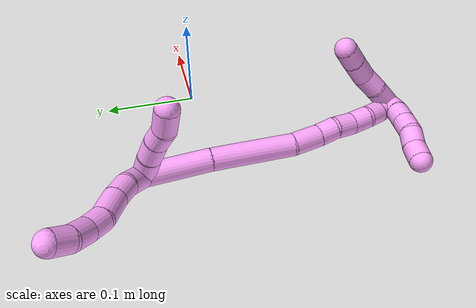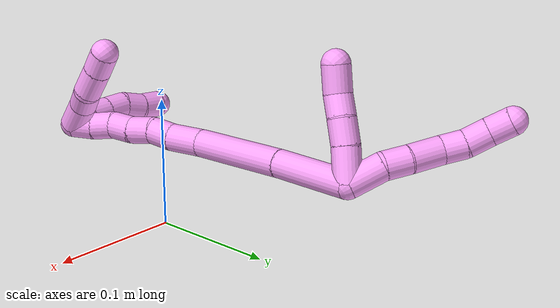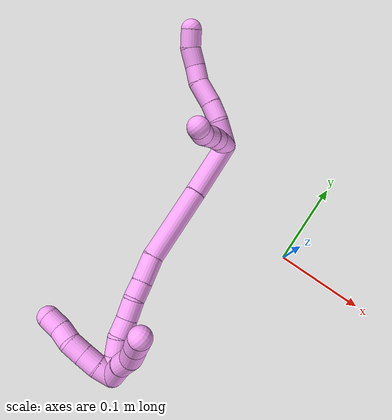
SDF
<sdf version="1.7">
 <world name="default">
  <model name="4">
   <static>0</static>
   <link name="4">
    <collision name="collision-cylinder-e_1_2_8">
     <pose>5.7e-05 0.006249 0.01508 -0.392814 0.003488 -0.000694</pose>
     <geometry><cylinder><radius>0.0125</radius><length>0.032647</length></cylinder></geometry>
     <surface>
      <friction><ode><mu>1.16</mu><mu2>1.16</mu2><slip1>0</slip1><slip2>0</slip2></ode></friction>
      <contact><ode><kp>1e+06</kp><kd>1</kd><max_vel>0</max_vel><min_depth>0.001</min_depth></ode></contact>
     </surface>
    </collision>
    <visual name="visual-cylinder-e_1_2_8">
     <pose>5.7e-05 0.006249 0.01508 -0.392814 0.003488 -0.000694</pose>
     <geometry><cylinder><radius>0.0125</radius><length>0.032647</length></cylinder></geometry>
     <material><ambient>1 0.65098 0.996078 1</ambient></material>
    </visual>
    <collision name="collision-cylinder-e_2_8_9">
     <pose>-0.00302 0.016352 0.040253 -0.36483 -0.282322 0.052415</pose>
     <geometry><cylinder><radius>0.0125</radius><length>0.022498</length></cylinder></geometry>
     <surface>
      <friction><ode><mu>1.16</mu><mu2>1.16</mu2><slip1>0</slip1><slip2>0</slip2></ode></friction>
      <contact><ode><kp>1e+06</kp><kd>1</kd><max_vel>0</max_vel><min_depth>0.001</min_depth></ode></contact>
     </surface>
    </collision>
    <visual name="visual-cylinder-e_2_8_9">
     <pose>-0.00302 0.016352 0.040253 -0.36483 -0.282322 0.052415</pose>
     <geometry><cylinder><radius>0.0125</radius><length>0.022498</length></cylinder></geometry>
     <material><ambient>1 0.65098 0.996078 1</ambient></material>
    </visual>
    <collision name="collision-cylinder-e_3_9_10">
     <pose>-0.010863 0.023632 0.064206 -0.242269 -0.318585 0.039108</pose>
     <geometry><cylinder><radius>0.0125</radius><length>0.030067</length></cylinder></geometry>
     <surface>
      <friction><ode><mu>1.16</mu><mu2>1.16</mu2><slip1>0</slip1><slip2>0</slip2></ode></friction>
      <contact><ode><kp>1e+06</kp><kd>1</kd><max_vel>0</max_vel><min_depth>0.001</min_depth></ode></contact>
     </surface>
    </collision>
    <visual name="visual-cylinder-e_3_9_10">
     <pose>-0.010863 0.023632 0.064206 -0.242269 -0.318585 0.039108</pose>
     <geometry><cylinder><radius>0.0125</radius><length>0.030067</length></cylinder></geometry>
     <material><ambient>1 0.65098 0.996078 1</ambient></material>
    </visual>
    <collision name="collision-cylinder-e_4_10_11">
     <pose>-0.017476 0.032233 0.08688 -0.530996 -0.18422 0.050224</pose>
     <geometry><cylinder><radius>0.0125</radius><length>0.020794</length></cylinder></geometry>
     <surface>
      <friction><ode><mu>1.16</mu><mu2>1.16</mu2><slip1>0</slip1><slip2>0</slip2></ode></friction>
      <contact><ode><kp>1e+06</kp><kd>1</kd><max_vel>0</max_vel><min_depth>0.001</min_depth></ode></contact>
     </surface>
    </collision>
    <visual name="visual-cylinder-e_4_10_11">
     <pose>-0.017476 0.032233 0.08688 -0.530996 -0.18422 0.050224</pose>
     <geometry><cylinder><radius>0.0125</radius><length>0.020794</length></cylinder></geometry>
     <material><ambient>1 0.65098 0.996078 1</ambient></material>
    </visual>
    <collision name="collision-cylinder-e_5_11_12">
     <pose>-0.019278 0.042114 0.105872 -0.433009 0.009129 -0.002008</pose>
     <geometry><cylinder><radius>0.0125</radius><length>0.022427</length></cylinder></geometry>
     <surface>
      <friction><ode><mu>1.16</mu><mu2>1.16</mu2><slip1>0</slip1><slip2>0</slip2></ode></friction>
      <contact><ode><kp>1e+06</kp><kd>1</kd><max_vel>0</max_vel><min_depth>0.001</min_depth></ode></contact>
     </surface>
    </collision>
    <visual name="visual-cylinder-e_5_11_12">
     <pose>-0.019278 0.042114 0.105872 -0.433009 0.009129 -0.002008</pose>
     <geometry><cylinder><radius>0.0125</radius><length>0.022427</length></cylinder></geometry>
     <material><ambient>1 0.65098 0.996078 1</ambient></material>
    </visual>
    <collision name="collision-cylinder-e_6_12_6">
     <pose>-0.017487 0.053783 0.124108 -0.712777 0.157278 -0.058656</pose>
     <geometry><cylinder><radius>0.0125</radius><length>0.021566</length></cylinder></geometry>
     <surface>
      <friction><ode><mu>1.16</mu><mu2>1.16</mu2><slip1>0</slip1><slip2>0</slip2></ode></friction>
      <contact><ode><kp>1e+06</kp><kd>1</kd><max_vel>0</max_vel><min_depth>0.001</min_depth></ode></contact>
     </surface>
    </collision>
    <visual name="visual-cylinder-e_6_12_6">
     <pose>-0.017487 0.053783 0.124108 -0.712777 0.157278 -0.058656</pose>
     <geometry><cylinder><radius>0.0125</radius><length>0.021566</length></cylinder></geometry>
     <material><ambient>1 0.65098 0.996078 1</ambient></material>
    </visual>
    <collision name="collision-cylinder-e_1_2_13">
     <pose>0.012157 -0.004388 0.008951 0.455773 0.884002 0.218622</pose>
     <geometry><cylinder><radius>0.0125</radius><length>0.031443</length></cylinder></geometry>
     <surface>
      <friction><ode><mu>1.16</mu><mu2>1.16</mu2><slip1>0</slip1><slip2>0</slip2></ode></friction>
      <contact><ode><kp>1e+06</kp><kd>1</kd><max_vel>0</max_vel><min_depth>0.001</min_depth></ode></contact>
     </surface>
    </collision>
    <visual name="visual-cylinder-e_1_2_13">
     <pose>0.012157 -0.004388 0.008951 0.455773 0.884002 0.218622</pose>
     <geometry><cylinder><radius>0.0125</radius><length>0.031443</length></cylinder></geometry>
     <material><ambient>1 0.65098 0.996078 1</ambient></material>
    </visual>
    <collision name="collision-cylinder-e_2_13_14">
     <pose>0.033416 -0.01281 0.023669 0.610392 0.912519 0.306812</pose>
     <geometry><cylinder><radius>0.0125</radius><length>0.023011</length></cylinder></geometry>
     <surface>
      <friction><ode><mu>1.16</mu><mu2>1.16</mu2><slip1>0</slip1><slip2>0</slip2></ode></friction>
      <contact><ode><kp>1e+06</kp><kd>1</kd><max_vel>0</max_vel><min_depth>0.001</min_depth></ode></contact>
     </surface>
    </collision>
    <visual name="visual-cylinder-e_2_13_14">
     <pose>0.033416 -0.01281 0.023669 0.610392 0.912519 0.306812</pose>
     <geometry><cylinder><radius>0.0125</radius><length>0.023011</length></cylinder></geometry>
     <material><ambient>1 0.65098 0.996078 1</ambient></material>
    </visual>
    <collision name="collision-cylinder-e_3_14_15">
     <pose>0.04971 -0.021393 0.034828 0.700878 0.795135 0.304613</pose>
     <geometry><cylinder><radius>0.0125</radius><length>0.020149</length></cylinder></geometry>
     <surface>
      <friction><ode><mu>1.16</mu><mu2>1.16</mu2><slip1>0</slip1><slip2>0</slip2></ode></friction>
      <contact><ode><kp>1e+06</kp><kd>1</kd><max_vel>0</max_vel><min_depth>0.001</min_depth></ode></contact>
     </surface>
    </collision>
    <visual name="visual-cylinder-e_3_14_15">
     <pose>0.04971 -0.021393 0.034828 0.700878 0.795135 0.304613</pose>
     <geometry><cylinder><radius>0.0125</radius><length>0.020149</length></cylinder></geometry>
     <material><ambient>1 0.65098 0.996078 1</ambient></material>
    </visual>
    <collision name="collision-cylinder-e_4_15_5">
     <pose>0.067862 -0.027896 0.046329 0.309566 1.04123 0.178454</pose>
     <geometry><cylinder><radius>0.0125</radius><length>0.025397</length></cylinder></geometry>
     <surface>
      <friction><ode><mu>1.16</mu><mu2>1.16</mu2><slip1>0</slip1><slip2>0</slip2></ode></friction>
      <contact><ode><kp>1e+06</kp><kd>1</kd><max_vel>0</max_vel><min_depth>0.001</min_depth></ode></contact>
     </surface>
    </collision>
    <visual name="visual-cylinder-e_4_15_5">
     <pose>0.067862 -0.027896 0.046329 0.309566 1.04123 0.178454</pose>
     <geometry><cylinder><radius>0.0125</radius><length>0.025397</length></cylinder></geometry>
     <material><ambient>1 0.65098 0.996078 1</ambient></material>
    </visual>
    <collision name="collision-cylinder-e_1_2_16">
     <pose>0.006291 -0.03421 -0.007573 1.78865 0.177651 0.220959</pose>
     <geometry><cylinder><radius>0.0125</radius><length>0.071198</length></cylinder></geometry>
     <surface>
      <friction><ode><mu>1.16</mu><mu2>1.16</mu2><slip1>0</slip1><slip2>0</slip2></ode></friction>
      <contact><ode><kp>1e+06</kp><kd>1</kd><max_vel>0</max_vel><min_depth>0.001</min_depth></ode></contact>
     </surface>
    </collision>
    <visual name="visual-cylinder-e_1_2_16">
     <pose>0.006291 -0.03421 -0.007573 1.78865 0.177651 0.220959</pose>
     <geometry><cylinder><radius>0.0125</radius><length>0.071198</length></cylinder></geometry>
     <material><ambient>1 0.65098 0.996078 1</ambient></material>
    </visual>
    <collision name="collision-cylinder-e_2_16_17">
     <pose>0.018189 -0.112307 -0.024971 1.79104 0.124036 0.154764</pose>
     <geometry><cylinder><radius>0.0125</radius><length>0.090641</length></cylinder></geometry>
     <surface>
      <friction><ode><mu>1.16</mu><mu2>1.16</mu2><slip1>0</slip1><slip2>0</slip2></ode></friction>
      <contact><ode><kp>1e+06</kp><kd>1</kd><max_vel>0</max_vel><min_depth>0.001</min_depth></ode></contact>
     </surface>
    </collision>
    <visual name="visual-cylinder-e_2_16_17">
     <pose>0.018189 -0.112307 -0.024971 1.79104 0.124036 0.154764</pose>
     <geometry><cylinder><radius>0.0125</radius><length>0.090641</length></cylinder></geometry>
     <material><ambient>1 0.65098 0.996078 1</ambient></material>
    </visual>
    <collision name="collision-cylinder-e_3_17_18">
     <pose>0.027398 -0.170686 -0.040624 1.95313 0.226601 0.33367</pose>
     <geometry><cylinder><radius>0.0125</radius><length>0.032063</length></cylinder></geometry>
     <surface>
      <friction><ode><mu>1.16</mu><mu2>1.16</mu2><slip1>0</slip1><slip2>0</slip2></ode></friction>
      <contact><ode><kp>1e+06</kp><kd>1</kd><max_vel>0</max_vel><min_depth>0.001</min_depth></ode></contact>
     </surface>
    </collision>
    <visual name="visual-cylinder-e_3_17_18">
     <pose>0.027398 -0.170686 -0.040624 1.95313 0.226601 0.33367</pose>
     <geometry><cylinder><radius>0.0125</radius><length>0.032063</length></cylinder></geometry>
     <material><ambient>1 0.65098 0.996078 1</ambient></material>
    </visual>
    <collision name="collision-cylinder-e_4_18_19">
     <pose>0.034589 -0.194648 -0.049457 1.87813 0.346766 0.46984</pose>
     <geometry><cylinder><radius>0.0125</radius><length>0.021124</length></cylinder></geometry>
     <surface>
      <friction><ode><mu>1.16</mu><mu2>1.16</mu2><slip1>0</slip1><slip2>0</slip2></ode></friction>
      <contact><ode><kp>1e+06</kp><kd>1</kd><max_vel>0</max_vel><min_depth>0.001</min_depth></ode></contact>
     </surface>
    </collision>
    <visual name="visual-cylinder-e_4_18_19">
     <pose>0.034589 -0.194648 -0.049457 1.87813 0.346766 0.46984</pose>
     <geometry><cylinder><radius>0.0125</radius><length>0.021124</length></cylinder></geometry>
     <material><ambient>1 0.65098 0.996078 1</ambient></material>
    </visual>
    <collision name="collision-cylinder-e_5_19_20">
     <pose>0.039537 -0.214236 -0.057767 2.05361 0.118331 0.195237</pose>
     <geometry><cylinder><radius>0.0125</radius><length>0.023014</length></cylinder></geometry>
     <surface>
      <friction><ode><mu>1.16</mu><mu2>1.16</mu2><slip1>0</slip1><slip2>0</slip2></ode></friction>
      <contact><ode><kp>1e+06</kp><kd>1</kd><max_vel>0</max_vel><min_depth>0.001</min_depth></ode></contact>
     </surface>
    </collision>
    <visual name="visual-cylinder-e_5_19_20">
     <pose>0.039537 -0.214236 -0.057767 2.05361 0.118331 0.195237</pose>
     <geometry><cylinder><radius>0.0125</radius><length>0.023014</length></cylinder></geometry>
     <material><ambient>1 0.65098 0.996078 1</ambient></material>
    </visual>
    <collision name="collision-cylinder-e_6_20_21">
     <pose>0.043918 -0.233986 -0.066665 1.92783 0.286031 0.409011</pose>
     <geometry><cylinder><radius>0.0125</radius><length>0.021426</length></cylinder></geometry>
     <surface>
      <friction><ode><mu>1.16</mu><mu2>1.16</mu2><slip1>0</slip1><slip2>0</slip2></ode></friction>
      <contact><ode><kp>1e+06</kp><kd>1</kd><max_vel>0</max_vel><min_depth>0.001</min_depth></ode></contact>
     </surface>
    </collision>
    <visual name="visual-cylinder-e_6_20_21">
     <pose>0.043918 -0.233986 -0.066665 1.92783 0.286031 0.409011</pose>
     <geometry><cylinder><radius>0.0125</radius><length>0.021426</length></cylinder></geometry>
     <material><ambient>1 0.65098 0.996078 1</ambient></material>
    </visual>
    <collision name="collision-cylinder-e_7_21_22">
     <pose>0.048677 -0.251528 -0.076402 2.23115 0.171639 0.347944</pose>
     <geometry><cylinder><radius>0.0125</radius><length>0.020337</length></cylinder></geometry>
     <surface>
      <friction><ode><mu>1.16</mu><mu2>1.16</mu2><slip1>0</slip1><slip2>0</slip2></ode></friction>
      <contact><ode><kp>1e+06</kp><kd>1</kd><max_vel>0</max_vel><min_depth>0.001</min_depth></ode></contact>
     </surface>
    </collision>
    <visual name="visual-cylinder-e_7_21_22">
     <pose>0.048677 -0.251528 -0.076402 2.23115 0.171639 0.347944</pose>
     <geometry><cylinder><radius>0.0125</radius><length>0.020337</length></cylinder></geometry>
     <material><ambient>1 0.65098 0.996078 1</ambient></material>
    </visual>
    <collision name="collision-cylinder-e_8_22_1">
     <pose>0.054054 -0.266936 -0.088255 2.22164 0.368682 0.719933</pose>
     <geometry><cylinder><radius>0.0125</radius><length>0.020198</length></cylinder></geometry>
     <surface>
      <friction><ode><mu>1.16</mu><mu2>1.16</mu2><slip1>0</slip1><slip2>0</slip2></ode></friction>
      <contact><ode><kp>1e+06</kp><kd>1</kd><max_vel>0</max_vel><min_depth>0.001</min_depth></ode></contact>
     </surface>
    </collision>
    <visual name="visual-cylinder-e_8_22_1">
     <pose>0.054054 -0.266936 -0.088255 2.22164 0.368682 0.719933</pose>
     <geometry><cylinder><radius>0.0125</radius><length>0.020198</length></cylinder></geometry>
     <material><ambient>1 0.65098 0.996078 1</ambient></material>
    </visual>
    <collision name="collision-cylinder-e_1_1_23">
     <pose>0.055065 -0.277181 -0.084715 0.289084 -0.265943 -0.038935</pose>
     <geometry><cylinder><radius>0.0125</radius><length>0.02</length></cylinder></geometry>
     <surface>
      <friction><ode><mu>1.16</mu><mu2>1.16</mu2><slip1>0</slip1><slip2>0</slip2></ode></friction>
      <contact><ode><kp>1e+06</kp><kd>1</kd><max_vel>0</max_vel><min_depth>0.001</min_depth></ode></contact>
     </surface>
    </collision>
    <visual name="visual-cylinder-e_1_1_23">
     <pose>0.055065 -0.277181 -0.084715 0.289084 -0.265943 -0.038935</pose>
     <geometry><cylinder><radius>0.0125</radius><length>0.02</length></cylinder></geometry>
     <material><ambient>1 0.65098 0.996078 1</ambient></material>
    </visual>
    <collision name="collision-cylinder-e_2_23_24">
     <pose>0.048452 -0.281505 -0.066431 0.172438 -0.409875 -0.035927</pose>
     <geometry><cylinder><radius>0.0125</radius><length>0.02</length></cylinder></geometry>
     <surface>
      <friction><ode><mu>1.16</mu><mu2>1.16</mu2><slip1>0</slip1><slip2>0</slip2></ode></friction>
      <contact><ode><kp>1e+06</kp><kd>1</kd><max_vel>0</max_vel><min_depth>0.001</min_depth></ode></contact>
     </surface>
    </collision>
    <visual name="visual-cylinder-e_2_23_24">
     <pose>0.048452 -0.281505 -0.066431 0.172438 -0.409875 -0.035927</pose>
     <geometry><cylinder><radius>0.0125</radius><length>0.02</length></cylinder></geometry>
     <material><ambient>1 0.65098 0.996078 1</ambient></material>
    </visual>
    <collision name="collision-cylinder-e_3_24_25">
     <pose>0.040529 -0.284403 -0.048299 0.144608 -0.404775 -0.029723</pose>
     <geometry><cylinder><radius>0.0125</radius><length>0.02</length></cylinder></geometry>
     <surface>
      <friction><ode><mu>1.16</mu><mu2>1.16</mu2><slip1>0</slip1><slip2>0</slip2></ode></friction>
      <contact><ode><kp>1e+06</kp><kd>1</kd><max_vel>0</max_vel><min_depth>0.001</min_depth></ode></contact>
     </surface>
    </collision>
    <visual name="visual-cylinder-e_3_24_25">
     <pose>0.040529 -0.284403 -0.048299 0.144608 -0.404775 -0.029723</pose>
     <geometry><cylinder><radius>0.0125</radius><length>0.02</length></cylinder></geometry>
     <material><ambient>1 0.65098 0.996078 1</ambient></material>
    </visual>
    <collision name="collision-cylinder-e_4_25_26">
     <pose>0.030076 -0.285717 -0.031616 -0.001391 -0.709451 0.000515</pose>
     <geometry><cylinder><radius>0.0125</radius><length>0.02</length></cylinder></geometry>
     <surface>
      <friction><ode><mu>1.16</mu><mu2>1.16</mu2><slip1>0</slip1><slip2>0</slip2></ode></friction>
      <contact><ode><kp>1e+06</kp><kd>1</kd><max_vel>0</max_vel><min_depth>0.001</min_depth></ode></contact>
     </surface>
    </collision>
    <visual name="visual-cylinder-e_4_25_26">
     <pose>0.030076 -0.285717 -0.031616 -0.001391 -0.709451 0.000515</pose>
     <geometry><cylinder><radius>0.0125</radius><length>0.02</length></cylinder></geometry>
     <material><ambient>1 0.65098 0.996078 1</ambient></material>
    </visual>
    <collision name="collision-cylinder-e_5_26_4">
     <pose>0.018606 -0.286867 -0.015421 0.134042 -0.518511 -0.035601</pose>
     <geometry><cylinder><radius>0.0125</radius><length>0.02</length></cylinder></geometry>
     <surface>
      <friction><ode><mu>1.16</mu><mu2>1.16</mu2><slip1>0</slip1><slip2>0</slip2></ode></friction>
      <contact><ode><kp>1e+06</kp><kd>1</kd><max_vel>0</max_vel><min_depth>0.001</min_depth></ode></contact>
     </surface>
    </collision>
    <visual name="visual-cylinder-e_5_26_4">
     <pose>0.018606 -0.286867 -0.015421 0.134042 -0.518511 -0.035601</pose>
     <geometry><cylinder><radius>0.0125</radius><length>0.02</length></cylinder></geometry>
     <material><ambient>1 0.65098 0.996078 1</ambient></material>
    </visual>
    <collision name="collision-cylinder-e_1_1_27">
     <pose>0.067443 -0.264873 -0.088262 -1.03299 0.719517 -0.420891</pose>
     <geometry><cylinder><radius>0.0125</radius><length>0.02959</length></cylinder></geometry>
     <surface>
      <friction><ode><mu>1.16</mu><mu2>1.16</mu2><slip1>0</slip1><slip2>0</slip2></ode></friction>
      <contact><ode><kp>1e+06</kp><kd>1</kd><max_vel>0</max_vel><min_depth>0.001</min_depth></ode></contact>
     </surface>
    </collision>
    <visual name="visual-cylinder-e_1_1_27">
     <pose>0.067443 -0.264873 -0.088262 -1.03299 0.719517 -0.420891</pose>
     <geometry><cylinder><radius>0.0125</radius><length>0.02959</length></cylinder></geometry>
     <material><ambient>1 0.65098 0.996078 1</ambient></material>
    </visual>
    <collision name="collision-cylinder-e_2_27_28">
     <pose>0.084759 -0.247389 -0.08017 -1.27774 0.740341 -0.561275</pose>
     <geometry><cylinder><radius>0.0125</radius><length>0.022433</length></cylinder></geometry>
     <surface>
      <friction><ode><mu>1.16</mu><mu2>1.16</mu2><slip1>0</slip1><slip2>0</slip2></ode></friction>
      <contact><ode><kp>1e+06</kp><kd>1</kd><max_vel>0</max_vel><min_depth>0.001</min_depth></ode></contact>
     </surface>
    </collision>
    <visual name="visual-cylinder-e_2_27_28">
     <pose>0.084759 -0.247389 -0.08017 -1.27774 0.740341 -0.561275</pose>
     <geometry><cylinder><radius>0.0125</radius><length>0.022433</length></cylinder></geometry>
     <material><ambient>1 0.65098 0.996078 1</ambient></material>
    </visual>
    <collision name="collision-cylinder-e_3_28_29">
     <pose>0.101228 -0.232083 -0.071128 -0.837289 0.730746 -0.337197</pose>
     <geometry><cylinder><radius>0.0125</radius><length>0.026677</length></cylinder></geometry>
     <surface>
      <friction><ode><mu>1.16</mu><mu2>1.16</mu2><slip1>0</slip1><slip2>0</slip2></ode></friction>
      <contact><ode><kp>1e+06</kp><kd>1</kd><max_vel>0</max_vel><min_depth>0.001</min_depth></ode></contact>
     </surface>
    </collision>
    <visual name="visual-cylinder-e_3_28_29">
     <pose>0.101228 -0.232083 -0.071128 -0.837289 0.730746 -0.337197</pose>
     <geometry><cylinder><radius>0.0125</radius><length>0.026677</length></cylinder></geometry>
     <material><ambient>1 0.65098 0.996078 1</ambient></material>
    </visual>
    <collision name="collision-cylinder-e_4_29_3">
     <pose>0.11748 -0.218899 -0.059408 -0.852953 0.761571 -0.359851</pose>
     <geometry><cylinder><radius>0.0125</radius><length>0.0213</length></cylinder></geometry>
     <surface>
      <friction><ode><mu>1.16</mu><mu2>1.16</mu2><slip1>0</slip1><slip2>0</slip2></ode></friction>
      <contact><ode><kp>1e+06</kp><kd>1</kd><max_vel>0</max_vel><min_depth>0.001</min_depth></ode></contact>
     </surface>
    </collision>
    <visual name="visual-cylinder-e_4_29_3">
     <pose>0.11748 -0.218899 -0.059408 -0.852953 0.761571 -0.359851</pose>
     <geometry><cylinder><radius>0.0125</radius><length>0.0213</length></cylinder></geometry>
     <material><ambient>1 0.65098 0.996078 1</ambient></material>
    </visual>
    <collision name="collision-sphere-3">
     <pose>0.124829 -0.213093 -0.054338 0 -0 0</pose>
     <geometry><sphere><radius>0.0125</radius></sphere></geometry>
     <surface>
      <friction><ode><mu>1.16</mu><mu2>1.16</mu2><slip1>0</slip1><slip2>0</slip2></ode></friction>
      <contact><ode><kp>1e+06</kp><kd>1</kd><max_vel>0</max_vel><min_depth>0.001</min_depth></ode></contact>
     </surface>
    </collision>
    <visual name="visual-sphere-3">
     <pose>0.124829 -0.213093 -0.054338 0 -0 0</pose>
     <geometry><sphere><radius>0.0125</radius></sphere></geometry>
     <material><ambient>1 0.65098 0.996078 1</ambient></material>
    </visual>
    <collision name="collision-sphere-29">
     <pose>0.11013 -0.224705 -0.064478 0 -0 0</pose>
     <geometry><sphere><radius>0.0125</radius></sphere></geometry>
     <surface>
      <friction><ode><mu>1.16</mu><mu2>1.16</mu2><slip1>0</slip1><slip2>0</slip2></ode></friction>
      <contact><ode><kp>1e+06</kp><kd>1</kd><max_vel>0</max_vel><min_depth>0.001</min_depth></ode></contact>
     </surface>
    </collision>
    <visual name="visual-sphere-29">
     <pose>0.11013 -0.224705 -0.064478 0 -0 0</pose>
     <geometry><sphere><radius>0.0125</radius></sphere></geometry>
     <material><ambient>1 0.65098 0.996078 1</ambient></material>
    </visual>
    <collision name="collision-sphere-28">
     <pose>0.092325 -0.239462 -0.077778 0 -0 0</pose>
     <geometry><sphere><radius>0.0125</radius></sphere></geometry>
     <surface>
      <friction><ode><mu>1.16</mu><mu2>1.16</mu2><slip1>0</slip1><slip2>0</slip2></ode></friction>
      <contact><ode><kp>1e+06</kp><kd>1</kd><max_vel>0</max_vel><min_depth>0.001</min_depth></ode></contact>
     </surface>
    </collision>
    <visual name="visual-sphere-28">
     <pose>0.092325 -0.239462 -0.077778 0 -0 0</pose>
     <geometry><sphere><radius>0.0125</radius></sphere></geometry>
     <material><ambient>1 0.65098 0.996078 1</ambient></material>
    </visual>
    <collision name="collision-sphere-27">
     <pose>0.077193 -0.255317 -0.082562 0 -0 0</pose>
     <geometry><sphere><radius>0.0125</radius></sphere></geometry>
     <surface>
      <friction><ode><mu>1.16</mu><mu2>1.16</mu2><slip1>0</slip1><slip2>0</slip2></ode></friction>
      <contact><ode><kp>1e+06</kp><kd>1</kd><max_vel>0</max_vel><min_depth>0.001</min_depth></ode></contact>
     </surface>
    </collision>
    <visual name="visual-sphere-27">
     <pose>0.077193 -0.255317 -0.082562 0 -0 0</pose>
     <geometry><sphere><radius>0.0125</radius></sphere></geometry>
     <material><ambient>1 0.65098 0.996078 1</ambient></material>
    </visual>
    <collision name="collision-sphere-4">
     <pose>0.013651 -0.288028 -0.006813 0 -0 0</pose>
     <geometry><sphere><radius>0.0125</radius></sphere></geometry>
     <surface>
      <friction><ode><mu>1.16</mu><mu2>1.16</mu2><slip1>0</slip1><slip2>0</slip2></ode></friction>
      <contact><ode><kp>1e+06</kp><kd>1</kd><max_vel>0</max_vel><min_depth>0.001</min_depth></ode></contact>
     </surface>
    </collision>
    <visual name="visual-sphere-4">
     <pose>0.013651 -0.288028 -0.006813 0 -0 0</pose>
     <geometry><sphere><radius>0.0125</radius></sphere></geometry>
     <material><ambient>1 0.65098 0.996078 1</ambient></material>
    </visual>
    <collision name="collision-sphere-26">
     <pose>0.023562 -0.285707 -0.024029 0 -0 0</pose>
     <geometry><sphere><radius>0.0125</radius></sphere></geometry>
     <surface>
      <friction><ode><mu>1.16</mu><mu2>1.16</mu2><slip1>0</slip1><slip2>0</slip2></ode></friction>
      <contact><ode><kp>1e+06</kp><kd>1</kd><max_vel>0</max_vel><min_depth>0.001</min_depth></ode></contact>
     </surface>
    </collision>
    <visual name="visual-sphere-26">
     <pose>0.023562 -0.285707 -0.024029 0 -0 0</pose>
     <geometry><sphere><radius>0.0125</radius></sphere></geometry>
     <material><ambient>1 0.65098 0.996078 1</ambient></material>
    </visual>
    <collision name="collision-sphere-25">
     <pose>0.036591 -0.285728 -0.039203 0 -0 0</pose>
     <geometry><sphere><radius>0.0125</radius></sphere></geometry>
     <surface>
      <friction><ode><mu>1.16</mu><mu2>1.16</mu2><slip1>0</slip1><slip2>0</slip2></ode></friction>
      <contact><ode><kp>1e+06</kp><kd>1</kd><max_vel>0</max_vel><min_depth>0.001</min_depth></ode></contact>
     </surface>
    </collision>
    <visual name="visual-sphere-25">
     <pose>0.036591 -0.285728 -0.039203 0 -0 0</pose>
     <geometry><sphere><radius>0.0125</radius></sphere></geometry>
     <material><ambient>1 0.65098 0.996078 1</ambient></material>
    </visual>
    <collision name="collision-sphere-24">
     <pose>0.044467 -0.283079 -0.057395 0 -0 0</pose>
     <geometry><sphere><radius>0.0125</radius></sphere></geometry>
     <surface>
      <friction><ode><mu>1.16</mu><mu2>1.16</mu2><slip1>0</slip1><slip2>0</slip2></ode></friction>
      <contact><ode><kp>1e+06</kp><kd>1</kd><max_vel>0</max_vel><min_depth>0.001</min_depth></ode></contact>
     </surface>
    </collision>
    <visual name="visual-sphere-24">
     <pose>0.044467 -0.283079 -0.057395 0 -0 0</pose>
     <geometry><sphere><radius>0.0125</radius></sphere></geometry>
     <material><ambient>1 0.65098 0.996078 1</ambient></material>
    </visual>
    <collision name="collision-sphere-23">
     <pose>0.052437 -0.279931 -0.075466 0 -0 0</pose>
     <geometry><sphere><radius>0.0125</radius></sphere></geometry>
     <surface>
      <friction><ode><mu>1.16</mu><mu2>1.16</mu2><slip1>0</slip1><slip2>0</slip2></ode></friction>
      <contact><ode><kp>1e+06</kp><kd>1</kd><max_vel>0</max_vel><min_depth>0.001</min_depth></ode></contact>
     </surface>
    </collision>
    <visual name="visual-sphere-23">
     <pose>0.052437 -0.279931 -0.075466 0 -0 0</pose>
     <geometry><sphere><radius>0.0125</radius></sphere></geometry>
     <material><ambient>1 0.65098 0.996078 1</ambient></material>
    </visual>
    <collision name="collision-sphere-1">
     <pose>0.057693 -0.27443 -0.093963 0 -0 0</pose>
     <geometry><sphere><radius>0.0125</radius></sphere></geometry>
     <surface>
      <friction><ode><mu>1.16</mu><mu2>1.16</mu2><slip1>0</slip1><slip2>0</slip2></ode></friction>
      <contact><ode><kp>1e+06</kp><kd>1</kd><max_vel>0</max_vel><min_depth>0.001</min_depth></ode></contact>
     </surface>
    </collision>
    <visual name="visual-sphere-1">
     <pose>0.057693 -0.27443 -0.093963 0 -0 0</pose>
     <geometry><sphere><radius>0.0125</radius></sphere></geometry>
     <material><ambient>1 0.65098 0.996078 1</ambient></material>
    </visual>
    <collision name="collision-sphere-22">
     <pose>0.050414 -0.259441 -0.082548 0 -0 0</pose>
     <geometry><sphere><radius>0.0125</radius></sphere></geometry>
     <surface>
      <friction><ode><mu>1.16</mu><mu2>1.16</mu2><slip1>0</slip1><slip2>0</slip2></ode></friction>
      <contact><ode><kp>1e+06</kp><kd>1</kd><max_vel>0</max_vel><min_depth>0.001</min_depth></ode></contact>
     </surface>
    </collision>
    <visual name="visual-sphere-22">
     <pose>0.050414 -0.259441 -0.082548 0 -0 0</pose>
     <geometry><sphere><radius>0.0125</radius></sphere></geometry>
     <material><ambient>1 0.65098 0.996078 1</ambient></material>
    </visual>
    <collision name="collision-sphere-21">
     <pose>0.046941 -0.243615 -0.070257 0 -0 0</pose>
     <geometry><sphere><radius>0.0125</radius></sphere></geometry>
     <surface>
      <friction><ode><mu>1.16</mu><mu2>1.16</mu2><slip1>0</slip1><slip2>0</slip2></ode></friction>
      <contact><ode><kp>1e+06</kp><kd>1</kd><max_vel>0</max_vel><min_depth>0.001</min_depth></ode></contact>
     </surface>
    </collision>
    <visual name="visual-sphere-21">
     <pose>0.046941 -0.243615 -0.070257 0 -0 0</pose>
     <geometry><sphere><radius>0.0125</radius></sphere></geometry>
     <material><ambient>1 0.65098 0.996078 1</ambient></material>
    </visual>
    <collision name="collision-sphere-12">
     <pose>-0.019176 0.046819 0.116051 0 -0 0</pose>
     <geometry><sphere><radius>0.0125</radius></sphere></geometry>
     <surface>
      <friction><ode><mu>1.16</mu><mu2>1.16</mu2><slip1>0</slip1><slip2>0</slip2></ode></friction>
      <contact><ode><kp>1e+06</kp><kd>1</kd><max_vel>0</max_vel><min_depth>0.001</min_depth></ode></contact>
     </surface>
    </collision>
    <visual name="visual-sphere-12">
     <pose>-0.019176 0.046819 0.116051 0 -0 0</pose>
     <geometry><sphere><radius>0.0125</radius></sphere></geometry>
     <material><ambient>1 0.65098 0.996078 1</ambient></material>
    </visual>
    <collision name="collision-sphere-11">
     <pose>-0.019381 0.037409 0.095694 0 -0 0</pose>
     <geometry><sphere><radius>0.0125</radius></sphere></geometry>
     <surface>
      <friction><ode><mu>1.16</mu><mu2>1.16</mu2><slip1>0</slip1><slip2>0</slip2></ode></friction>
      <contact><ode><kp>1e+06</kp><kd>1</kd><max_vel>0</max_vel><min_depth>0.001</min_depth></ode></contact>
     </surface>
    </collision>
    <visual name="visual-sphere-11">
     <pose>-0.019381 0.037409 0.095694 0 -0 0</pose>
     <geometry><sphere><radius>0.0125</radius></sphere></geometry>
     <material><ambient>1 0.65098 0.996078 1</ambient></material>
    </visual>
    <collision name="collision-sphere-10">
     <pose>-0.015572 0.027057 0.078066 0 -0 0</pose>
     <geometry><sphere><radius>0.0125</radius></sphere></geometry>
     <surface>
      <friction><ode><mu>1.16</mu><mu2>1.16</mu2><slip1>0</slip1><slip2>0</slip2></ode></friction>
      <contact><ode><kp>1e+06</kp><kd>1</kd><max_vel>0</max_vel><min_depth>0.001</min_depth></ode></contact>
     </surface>
    </collision>
    <visual name="visual-sphere-10">
     <pose>-0.015572 0.027057 0.078066 0 -0 0</pose>
     <geometry><sphere><radius>0.0125</radius></sphere></geometry>
     <material><ambient>1 0.65098 0.996078 1</ambient></material>
    </visual>
    <collision name="collision-sphere-9">
     <pose>-0.006154 0.020206 0.050346 0 -0 0</pose>
     <geometry><sphere><radius>0.0125</radius></sphere></geometry>
     <surface>
      <friction><ode><mu>1.16</mu><mu2>1.16</mu2><slip1>0</slip1><slip2>0</slip2></ode></friction>
      <contact><ode><kp>1e+06</kp><kd>1</kd><max_vel>0</max_vel><min_depth>0.001</min_depth></ode></contact>
     </surface>
    </collision>
    <visual name="visual-sphere-9">
     <pose>-0.006154 0.020206 0.050346 0 -0 0</pose>
     <geometry><sphere><radius>0.0125</radius></sphere></geometry>
     <material><ambient>1 0.65098 0.996078 1</ambient></material>
    </visual>
    <collision name="collision-sphere-2">
     <geometry><sphere><radius>0.0125</radius></sphere></geometry>
     <surface>
      <friction><ode><mu>1.16</mu><mu2>1.16</mu2><slip1>0</slip1><slip2>0</slip2></ode></friction>
      <contact><ode><kp>1e+06</kp><kd>1</kd><max_vel>0</max_vel><min_depth>0.001</min_depth></ode></contact>
     </surface>
    </collision>
    <visual name="visual-sphere-2">
     <geometry><sphere><radius>0.0125</radius></sphere></geometry>
     <material><ambient>1 0.65098 0.996078 1</ambient></material>
    </visual>
    <collision name="collision-sphere-19">
     <pose>0.038178 -0.204115 -0.052462 0 -0 0</pose>
     <geometry><sphere><radius>0.0125</radius></sphere></geometry>
     <surface>
      <friction><ode><mu>1.16</mu><mu2>1.16</mu2><slip1>0</slip1><slip2>0</slip2></ode></friction>
      <contact><ode><kp>1e+06</kp><kd>1</kd><max_vel>0</max_vel><min_depth>0.001</min_depth></ode></contact>
     </surface>
    </collision>
    <visual name="visual-sphere-19">
     <pose>0.038178 -0.204115 -0.052462 0 -0 0</pose>
     <geometry><sphere><radius>0.0125</radius></sphere></geometry>
     <material><ambient>1 0.65098 0.996078 1</ambient></material>
    </visual>
    <collision name="collision-sphere-8">
     <pose>0.000114 0.012497 0.030161 0 -0 0</pose>
     <geometry><sphere><radius>0.0125</radius></sphere></geometry>
     <surface>
      <friction><ode><mu>1.16</mu><mu2>1.16</mu2><slip1>0</slip1><slip2>0</slip2></ode></friction>
      <contact><ode><kp>1e+06</kp><kd>1</kd><max_vel>0</max_vel><min_depth>0.001</min_depth></ode></contact>
     </surface>
    </collision>
    <visual name="visual-sphere-8">
     <pose>0.000114 0.012497 0.030161 0 -0 0</pose>
     <geometry><sphere><radius>0.0125</radius></sphere></geometry>
     <material><ambient>1 0.65098 0.996078 1</ambient></material>
    </visual>
    <collision name="collision-sphere-6">
     <pose>-0.015798 0.060747 0.132165 0 -0 0</pose>
     <geometry><sphere><radius>0.0125</radius></sphere></geometry>
     <surface>
      <friction><ode><mu>1.16</mu><mu2>1.16</mu2><slip1>0</slip1><slip2>0</slip2></ode></friction>
      <contact><ode><kp>1e+06</kp><kd>1</kd><max_vel>0</max_vel><min_depth>0.001</min_depth></ode></contact>
     </surface>
    </collision>
    <visual name="visual-sphere-6">
     <pose>-0.015798 0.060747 0.132165 0 -0 0</pose>
     <geometry><sphere><radius>0.0125</radius></sphere></geometry>
     <material><ambient>1 0.65098 0.996078 1</ambient></material>
    </visual>
    <collision name="collision-sphere-13">
     <pose>0.024314 -0.008775 0.017902 0 -0 0</pose>
     <geometry><sphere><radius>0.0125</radius></sphere></geometry>
     <surface>
      <friction><ode><mu>1.16</mu><mu2>1.16</mu2><slip1>0</slip1><slip2>0</slip2></ode></friction>
      <contact><ode><kp>1e+06</kp><kd>1</kd><max_vel>0</max_vel><min_depth>0.001</min_depth></ode></contact>
     </surface>
    </collision>
    <visual name="visual-sphere-13">
     <pose>0.024314 -0.008775 0.017902 0 -0 0</pose>
     <geometry><sphere><radius>0.0125</radius></sphere></geometry>
     <material><ambient>1 0.65098 0.996078 1</ambient></material>
    </visual>
    <collision name="collision-sphere-14">
     <pose>0.042517 -0.016844 0.029437 0 -0 0</pose>
     <geometry><sphere><radius>0.0125</radius></sphere></geometry>
     <surface>
      <friction><ode><mu>1.16</mu><mu2>1.16</mu2><slip1>0</slip1><slip2>0</slip2></ode></friction>
      <contact><ode><kp>1e+06</kp><kd>1</kd><max_vel>0</max_vel><min_depth>0.001</min_depth></ode></contact>
     </surface>
    </collision>
    <visual name="visual-sphere-14">
     <pose>0.042517 -0.016844 0.029437 0 -0 0</pose>
     <geometry><sphere><radius>0.0125</radius></sphere></geometry>
     <material><ambient>1 0.65098 0.996078 1</ambient></material>
    </visual>
    <collision name="collision-sphere-15">
     <pose>0.056903 -0.025942 0.040219 0 -0 0</pose>
     <geometry><sphere><radius>0.0125</radius></sphere></geometry>
     <surface>
      <friction><ode><mu>1.16</mu><mu2>1.16</mu2><slip1>0</slip1><slip2>0</slip2></ode></friction>
      <contact><ode><kp>1e+06</kp><kd>1</kd><max_vel>0</max_vel><min_depth>0.001</min_depth></ode></contact>
     </surface>
    </collision>
    <visual name="visual-sphere-15">
     <pose>0.056903 -0.025942 0.040219 0 -0 0</pose>
     <geometry><sphere><radius>0.0125</radius></sphere></geometry>
     <material><ambient>1 0.65098 0.996078 1</ambient></material>
    </visual>
    <collision name="collision-sphere-5">
     <pose>0.078821 -0.029851 0.052439 0 -0 0</pose>
     <geometry><sphere><radius>0.0125</radius></sphere></geometry>
     <surface>
      <friction><ode><mu>1.16</mu><mu2>1.16</mu2><slip1>0</slip1><slip2>0</slip2></ode></friction>
      <contact><ode><kp>1e+06</kp><kd>1</kd><max_vel>0</max_vel><min_depth>0.001</min_depth></ode></contact>
     </surface>
    </collision>
    <visual name="visual-sphere-5">
     <pose>0.078821 -0.029851 0.052439 0 -0 0</pose>
     <geometry><sphere><radius>0.0125</radius></sphere></geometry>
     <material><ambient>1 0.65098 0.996078 1</ambient></material>
    </visual>
    <collision name="collision-sphere-16">
     <pose>0.012582 -0.068421 -0.015146 0 -0 0</pose>
     <geometry><sphere><radius>0.0125</radius></sphere></geometry>
     <surface>
      <friction><ode><mu>1.16</mu><mu2>1.16</mu2><slip1>0</slip1><slip2>0</slip2></ode></friction>
      <contact><ode><kp>1e+06</kp><kd>1</kd><max_vel>0</max_vel><min_depth>0.001</min_depth></ode></contact>
     </surface>
    </collision>
    <visual name="visual-sphere-16">
     <pose>0.012582 -0.068421 -0.015146 0 -0 0</pose>
     <geometry><sphere><radius>0.0125</radius></sphere></geometry>
     <material><ambient>1 0.65098 0.996078 1</ambient></material>
    </visual>
    <collision name="collision-sphere-17">
     <pose>0.023796 -0.156192 -0.034796 0 -0 0</pose>
     <geometry><sphere><radius>0.0125</radius></sphere></geometry>
     <surface>
      <friction><ode><mu>1.16</mu><mu2>1.16</mu2><slip1>0</slip1><slip2>0</slip2></ode></friction>
      <contact><ode><kp>1e+06</kp><kd>1</kd><max_vel>0</max_vel><min_depth>0.001</min_depth></ode></contact>
     </surface>
    </collision>
    <visual name="visual-sphere-17">
     <pose>0.023796 -0.156192 -0.034796 0 -0 0</pose>
     <geometry><sphere><radius>0.0125</radius></sphere></geometry>
     <material><ambient>1 0.65098 0.996078 1</ambient></material>
    </visual>
    <collision name="collision-sphere-18">
     <pose>0.030999 -0.18518 -0.046452 0 -0 0</pose>
     <geometry><sphere><radius>0.0125</radius></sphere></geometry>
     <surface>
      <friction><ode><mu>1.16</mu><mu2>1.16</mu2><slip1>0</slip1><slip2>0</slip2></ode></friction>
      <contact><ode><kp>1e+06</kp><kd>1</kd><max_vel>0</max_vel><min_depth>0.001</min_depth></ode></contact>
     </surface>
    </collision>
    <visual name="visual-sphere-18">
     <pose>0.030999 -0.18518 -0.046452 0 -0 0</pose>
     <geometry><sphere><radius>0.0125</radius></sphere></geometry>
     <material><ambient>1 0.65098 0.996078 1</ambient></material>
    </visual>
    <collision name="collision-sphere-20">
     <pose>0.040895 -0.224356 -0.063073 0 -0 0</pose>
     <geometry><sphere><radius>0.0125</radius></sphere></geometry>
     <surface>
      <friction><ode><mu>1.16</mu><mu2>1.16</mu2><slip1>0</slip1><slip2>0</slip2></ode></friction>
      <contact><ode><kp>1e+06</kp><kd>1</kd><max_vel>0</max_vel><min_depth>0.001</min_depth></ode></contact>
     </surface>
    </collision>
    <visual name="visual-sphere-20">
     <pose>0.040895 -0.224356 -0.063073 0 -0 0</pose>
     <geometry><sphere><radius>0.0125</radius></sphere></geometry>
     <material><ambient>1 0.65098 0.996078 1</ambient></material>
    </visual>
    <inertial>
     <pose>0.030538 -0.123627 -0.014475 0 -0 0</pose>
     <mass>0.75</mass>
     <inertia><ixx>0.000171</ixx><ixy>0</ixy><ixz>0</ixz><iyy>1.9e-05</iyy><iyz>0</iyz><izz>8.9e-05</izz></inertia>
    </inertial>
   </link>
   <pose>-0.133946 0.072898 0.012624 0.076916 -1.10842 -0.283454</pose>
  </model>
 </world>
</sdf>
